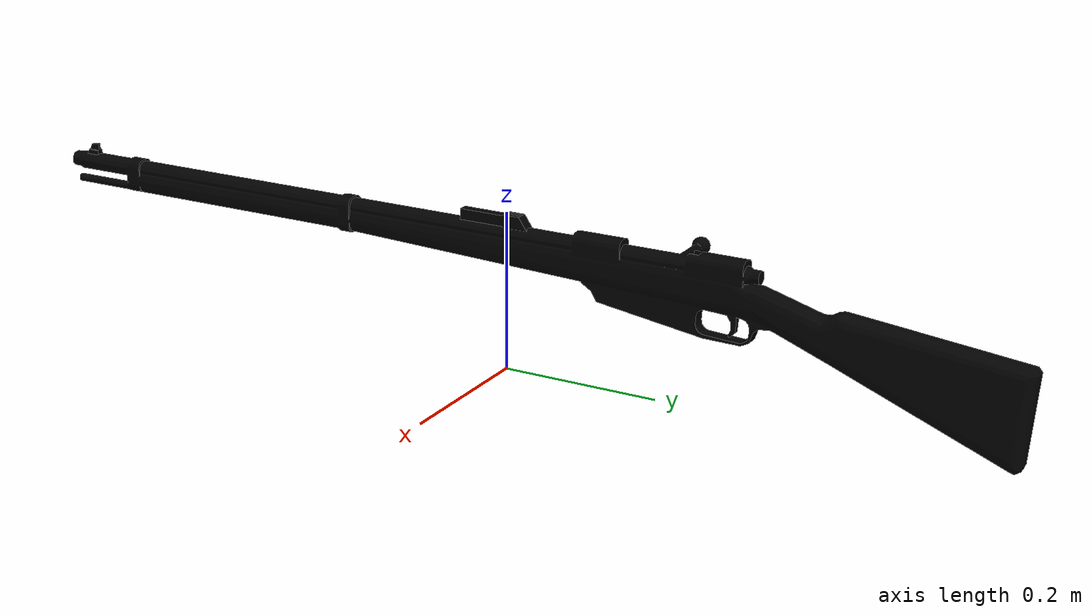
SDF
<?xml version="1.0" ?>
<sdf version="1.6">
  <model name="gun">
    <static>true</static>
    <link name="link">
      <!-- Thermal override visual for thermal camera -->
      <visual name="heat_mesh">
        <geometry>
          <mesh>
            <uri>model://gun/meshes/gun.obj</uri>
            <scale>1 1 1</scale>
          </mesh>
        </geometry>
        <material>
          <ambient>0 0 0 0</ambient>
          <diffuse>0 0 0 0</diffuse>
          <specular>0 0 0 0</specular>
          <transparency>1.0</transparency>
        </material>
        <plugin filename="ignition-gazebo-thermal-system"
                name="ignition::gazebo::systems::Thermal">
          <temperature>323.15</temperature>
          <emissivity>0.95</emissivity>
        </plugin>
      </visual>
      <visual name="visual">
        <geometry>
          <mesh>
            <uri>model://gun/meshes/gun.obj</uri>
          </mesh>
        </geometry>
        <plugin filename="ignition-gazebo-thermal-system"
                name="ignition::gazebo::systems::Thermal">
          <temperature>300.15</temperature>
          <emissivity>0.95</emissivity>
        </plugin>
      </visual>

      <collision name="collision">
        <geometry>
          <mesh><uri>model://gun/meshes/gun.stl</uri></mesh>
        </geometry>
      </collision>
    </link>
  </model>
</sdf>
